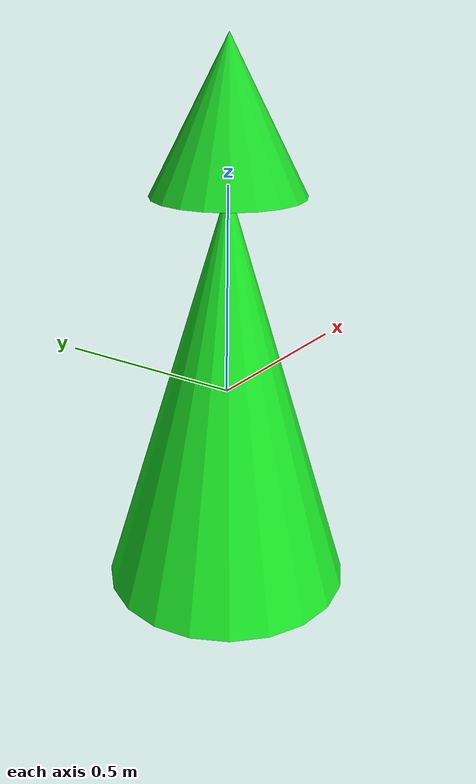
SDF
<?xml version="1.0" ?>
<sdf version="1.9">
  <model name="green_cone_buoy">
    <static>true</static>
    <link name="link">
      <collision name="body_collision">
        <geometry>
          <cone>
            <radius>0.3</radius>
            <length>1.0</length>
          </cone>
        </geometry>
      </collision>
      <visual name="body">
        <geometry>
          <cone>
            <radius>0.3</radius>
            <length>1.0</length>
          </cone>
        </geometry>
        <material>
          <ambient>0.05 0.75 0.1 1</ambient>
          <diffuse>0.1 0.9 0.15 1</diffuse>
        </material>
      </visual>

      <collision name="topmark_collision">
        <pose>0 0 0.65 0 0 0</pose>
        <geometry>
          <cone>
            <radius>0.18</radius>
            <length>0.35</length>
          </cone>
        </geometry>
      </collision>
      <visual name="topmark">
        <pose>0 0 0.65 0 0 0</pose>
        <geometry>
          <cone>
            <radius>0.18</radius>
            <length>0.35</length>
          </cone>
        </geometry>
        <material>
          <ambient>0.05 0.7 0.1 1</ambient>
          <diffuse>0.1 0.85 0.15 1</diffuse>
        </material>
      </visual>
    </link>
  </model>
</sdf>
